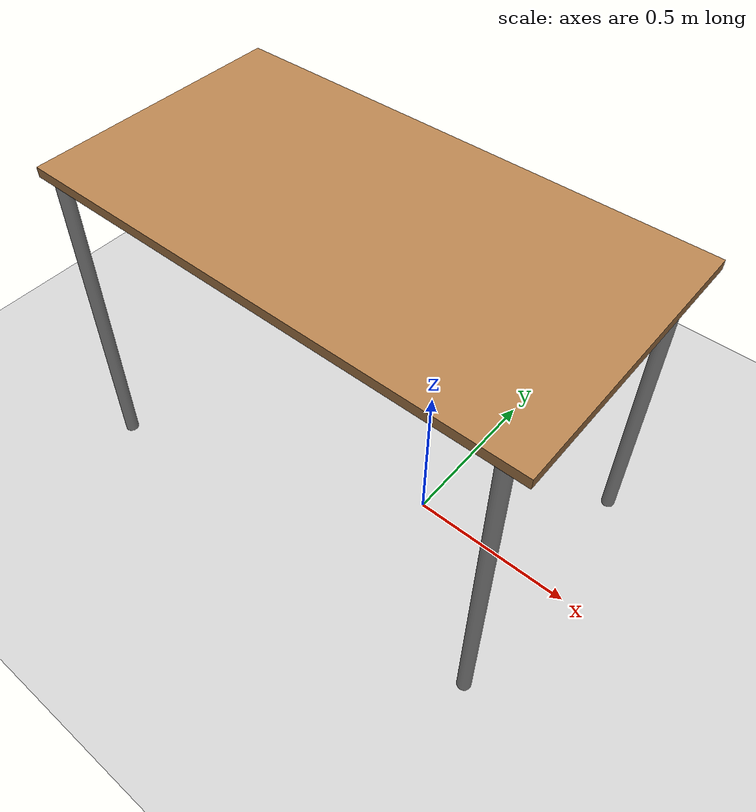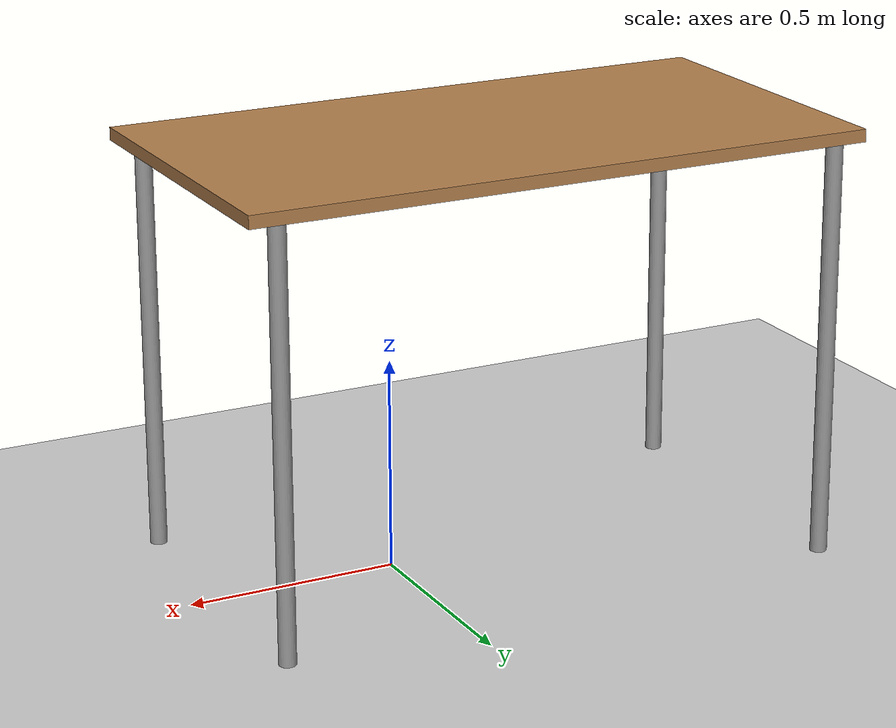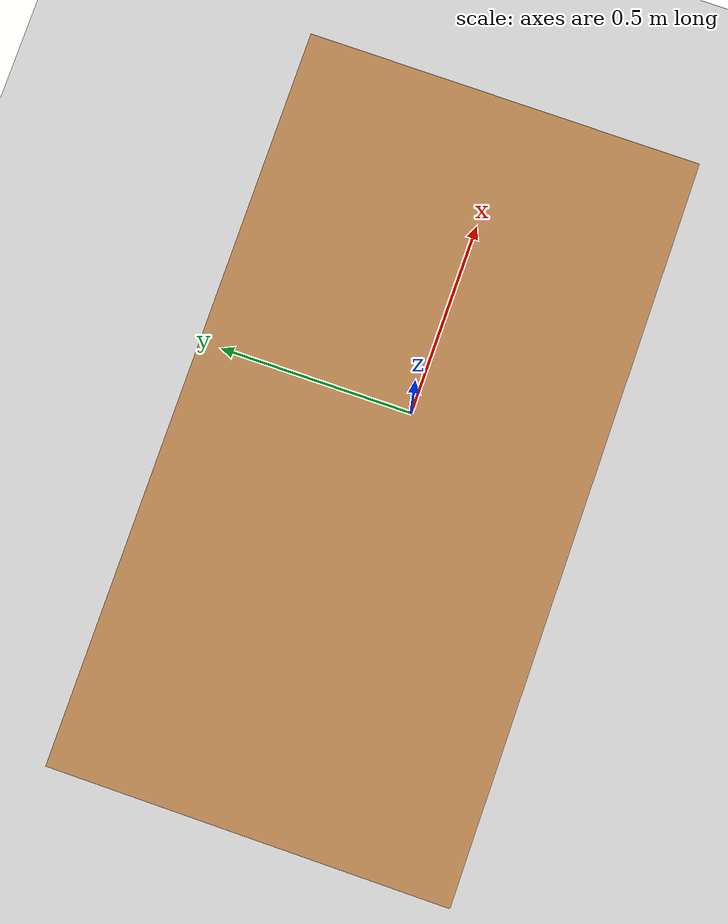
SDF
<?xml version="1.0" ?>

<sdf version="1.5">
	<world name="default">
		<!-- A global light source -->
		<include>
			<uri>model://sun</uri>
		</include>
		<!-- A ground plane -->
		<include>
			<uri>model://ground_plane</uri>
		</include>
		<!-- A table -->
		<include>
			<uri>model://table</uri>
			<pose> -0.25 0 0 0 0 0</pose>
		</include>
	</world>
</sdf>

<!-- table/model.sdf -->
<sdf version="1.5">
  <model name="table">
    <static>true</static>
    <link name="link">
      <collision name="surface">
        <pose>0 0 1.0 0 0 0</pose>
        <geometry>
          <box>
            <size>1.5 0.8 0.03</size>
          </box>
        </geometry>
        <surface>
          <friction>
            <ode>
              <mu>0.6</mu>
              <mu2>0.6</mu2>
            </ode>
          </friction>
        </surface>
      </collision>
      <visual name="visual1">
        <pose>0 0 1.0 0 0 0</pose>
        <geometry>
          <box>
            <size>1.5 0.8 0.03</size>
          </box>
        </geometry>
        <material>
          <script>
            <uri>model://media/materials/scripts/gazebo.material</uri>
            <name>Gazebo/Wood</name>
          </script>
        </material>
      </visual>
      <collision name="front_left_leg">
        <pose>0.68 0.38 0.5 0 0 0</pose>
        <geometry>
          <cylinder>
            <radius>0.02</radius>
            <length>1.0</length>
          </cylinder>
        </geometry>
      </collision>
      <visual name="front_left_leg">
        <pose>0.68 0.38 0.5 0 0 0</pose>
        <geometry>
          <cylinder>
            <radius>0.02</radius>
            <length>1.0</length>
          </cylinder>
        </geometry>
        <material>
          <script>
            <uri>model://media/materials/scripts/gazebo.material</uri>
            <name>Gazebo/Grey</name>
          </script>
        </material>
      </visual>
      <collision name="front_right_leg">
        <pose>0.68 -0.38 0.5 0 0 0</pose>
        <geometry>
          <cylinder>
            <radius>0.02</radius>
            <length>1.0</length>
          </cylinder>
        </geometry>
      </collision>
      <visual name="front_right_leg">
        <pose>0.68 -0.38 0.5 0 0 0</pose>
        <geometry>
          <cylinder>
            <radius>0.02</radius>
            <length>1.0</length>
          </cylinder>
        </geometry>
        <material>
          <script>
            <uri>model://media/materials/scripts/gazebo.material</uri>
            <name>Gazebo/Grey</name>
          </script>
        </material>
      </visual>
      <collision name="back_right_leg">
        <pose>-0.68 -0.38 0.5 0 0 0</pose>
        <geometry>
          <cylinder>
            <radius>0.02</radius>
            <length>1.0</length>
          </cylinder>
        </geometry>
      </collision>
      <visual name="back_right_leg">
        <pose>-0.68 -0.38 0.5 0 0 0</pose>
        <geometry>
          <cylinder>
            <radius>0.02</radius>
            <length>1.0</length>
          </cylinder>
        </geometry>
        <material>
          <script>
            <uri>model://media/materials/scripts/gazebo.material</uri>
            <name>Gazebo/Grey</name>
          </script>
        </material>
      </visual>
      <collision name="back_left_leg">
        <pose>-0.68 0.38 0.5 0 0 0</pose>
        <geometry>
          <cylinder>
            <radius>0.02</radius>
            <length>1.0</length>
          </cylinder>
        </geometry>
      </collision>
      <visual name="back_left_leg">
        <pose>-0.68 0.38 0.5 0 0 0</pose>
        <geometry>
          <cylinder>
            <radius>0.02</radius>
            <length>1.0</length>
          </cylinder>
        </geometry>
        <material>
          <script>
            <uri>model://media/materials/scripts/gazebo.material</uri>
            <name>Gazebo/Grey</name>
          </script>
        </material>
      </visual>
    </link>
  </model>
</sdf>
